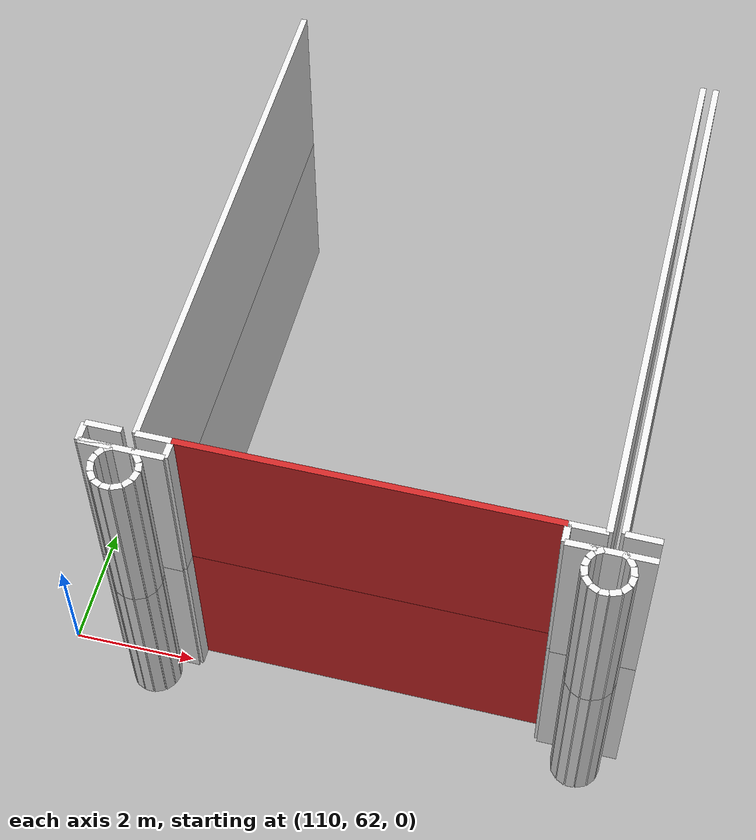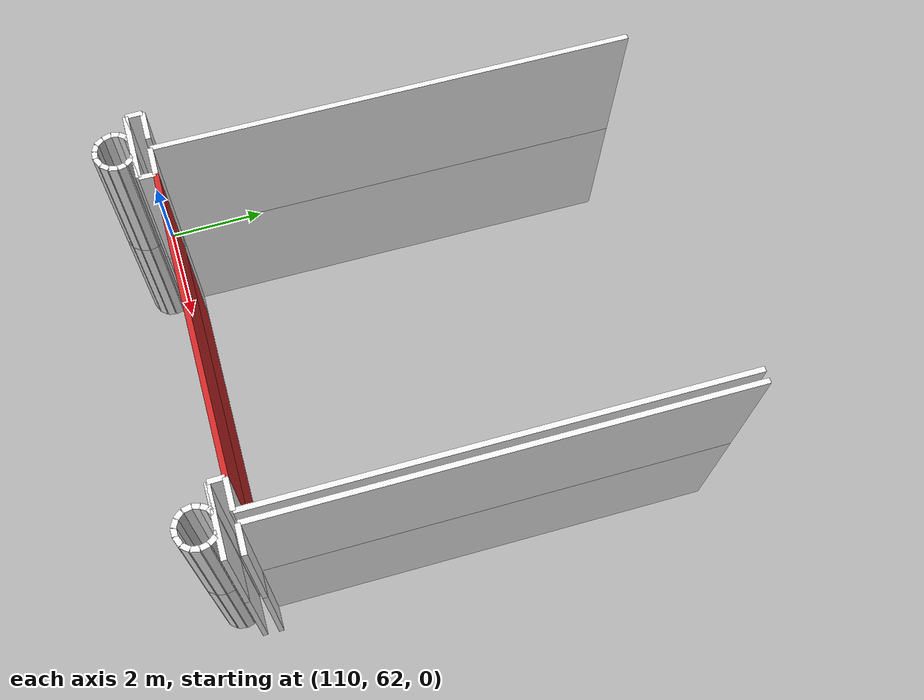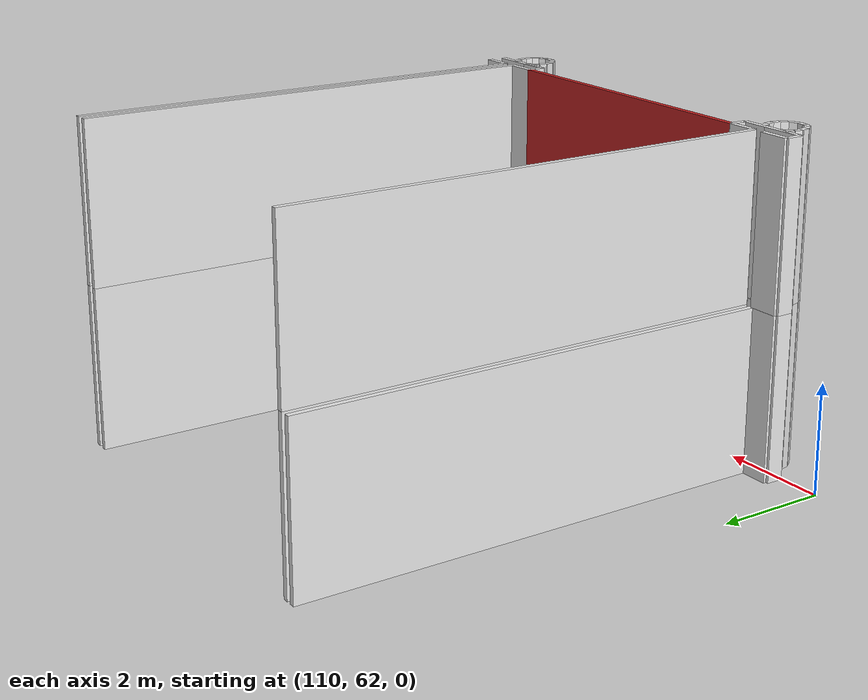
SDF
<sdf version="1.6">
 <world name="default">
  <model name="wall_115.0_62.2_1.5">
   <static>true</static>
   <pose>115.0 62.23999999999069 1.5 0 0 -0.014034166198596688</pose>
   <link name="link">
    <visual name="visual">
     <geometry><box><size>5.700561375812611 0.1 3</size></box></geometry>
     <material>
      <script><uri>file://media/materials/scripts/gazebo.material</uri><name>Gazebo/Red</name></script>
     </material>
    </visual>
    <collision name="collision"><geometry><box><size>5.700561375812611 0.1 3</size></box></geometry></collision>
   </link>
  </model>
  <model name="wall_115.0_62.2_4.5">
   <static>true</static>
   <pose>115.0 62.23999999999069 4.5 0 0 -0.014034166198596688</pose>
   <link name="link">
    <visual name="visual">
     <geometry><box><size>5.700561375812611 0.1 3</size></box></geometry>
     <material>
      <script><uri>file://media/materials/scripts/gazebo.material</uri><name>Gazebo/Red</name></script>
     </material>
    </visual>
    <collision name="collision"><geometry><box><size>5.700561375812611 0.1 3</size></box></geometry></collision>
   </link>
  </model>
  <model name="wall_118.5_66.6_1.5">
   <static>true</static>
   <pose>118.47999999998137 66.61999999987893 1.5 0 0 1.557253136818869</pose>
   <link name="link">
    <visual name="visual">
     <geometry><box><size>8.860812603688696 0.1 3</size></box></geometry>
     <material>
      <script><uri>file://media/materials/scripts/gazebo.material</uri><name>Gazebo/White</name></script>
     </material>
    </visual>
    <collision name="collision"><geometry><box><size>8.860812603688696 0.1 3</size></box></geometry></collision>
   </link>
  </model>
  <model name="wall_111.7_66.7_1.5">
   <static>true</static>
   <pose>111.6699999999837 66.71999999997206 1.5 0 0 -1.5843395167709244</pose>
   <link name="link">
    <visual name="visual">
     <geometry><box><size>8.860812603688696 0.1 3</size></box></geometry>
     <material>
      <script><uri>file://media/materials/scripts/gazebo.material</uri><name>Gazebo/White</name></script>
     </material>
    </visual>
    <collision name="collision"><geometry><box><size>8.860812603688696 0.1 3</size></box></geometry></collision>
   </link>
  </model>
  <model name="wall_111.9_62.3_1.5">
   <static>true</static>
   <pose>111.88000000000466 62.28499999991618 1.5 0 0 -0.018516402514992796</pose>
   <link name="link">
    <visual name="visual">
     <geometry><box><size>0.540092584697361 0.1 3</size></box></geometry>
     <material>
      <script><uri>file://media/materials/scripts/gazebo.material</uri><name>Gazebo/White</name></script>
     </material>
    </visual>
    <collision name="collision"><geometry><box><size>0.540092584697361 0.1 3</size></box></geometry></collision>
   </link>
  </model>
  <model name="wall_118.1_62.2_1.5">
   <static>true</static>
   <pose>118.13499999998021 62.19500000006519 1.5 0 0 -0.01754206048187066</pose>
   <link name="link">
    <visual name="visual">
     <geometry><box><size>0.5700877125608004 0.1 3</size></box></geometry>
     <material>
      <script><uri>file://media/materials/scripts/gazebo.material</uri><name>Gazebo/White</name></script>
     </material>
    </visual>
    <collision name="collision"><geometry><box><size>0.5700877125608004 0.1 3</size></box></geometry></collision>
   </link>
  </model>
  <model name="wall_118.7_66.6_1.5">
   <static>true</static>
   <pose>118.69000000000233 66.62999999988824 1.5 0 0 -1.5843701537129677</pose>
   <link name="link">
    <visual name="visual">
     <geometry><box><size>8.840814441971077 0.1 3</size></box></geometry>
     <material>
      <script><uri>file://media/materials/scripts/gazebo.material</uri><name>Gazebo/White</name></script>
     </material>
    </visual>
    <collision name="collision"><geometry><box><size>8.840814441971077 0.1 3</size></box></geometry></collision>
   </link>
  </model>
  <model name="wall_118.9_62.2_1.5">
   <static>true</static>
   <pose>118.89499999998952 62.205000000074506 1.5 0 0 -0.018865685601167047</pose>
   <link name="link">
    <visual name="visual">
     <geometry><box><size>0.5300943311934637 0.1 3</size></box></geometry>
     <material>
      <script><uri>file://media/materials/scripts/gazebo.material</uri><name>Gazebo/White</name></script>
     </material>
    </visual>
    <collision name="collision"><geometry><box><size>0.5300943311934637 0.1 3</size></box></geometry></collision>
   </link>
  </model>
  <model name="wall_111.5_66.7_1.5">
   <static>true</static>
   <pose>111.47499999997672 66.7249999998603 1.5 0 0 1.5561081176441238</pose>
   <link name="link">
    <visual name="visual">
     <geometry><box><size>8.850954750853134 0.1 3</size></box></geometry>
     <material>
      <script><uri>file://media/materials/scripts/gazebo.material</uri><name>Gazebo/White</name></script>
     </material>
    </visual>
    <collision name="collision"><geometry><box><size>8.850954750853134 0.1 3</size></box></geometry></collision>
   </link>
  </model>
  <model name="wall_111.1_62.3_1.5">
   <static>true</static>
   <pose>111.12999999997555 62.30499999993481 1.5 0 0 -0.017855245571888664</pose>
   <link name="link">
    <visual name="visual">
     <geometry><box><size>0.5600892785996132 0.1 3</size></box></geometry>
     <material>
      <script><uri>file://media/materials/scripts/gazebo.material</uri><name>Gazebo/White</name></script>
     </material>
    </visual>
    <collision name="collision"><geometry><box><size>0.5600892785996132 0.1 3</size></box></geometry></collision>
   </link>
  </model>
  <model name="wall_110.8_62.2_1.5">
   <static>true</static>
   <pose>110.84999999997672 62.15500000002794 1.5 0 0 -1.5707963267948966</pose>
   <link name="link">
    <visual name="visual">
     <geometry><box><size>0.31000000005587935 0.1 3</size></box></geometry>
     <material>
      <script><uri>file://media/materials/scripts/gazebo.material</uri><name>Gazebo/White</name></script>
     </material>
    </visual>
    <collision name="collision"><geometry><box><size>0.31000000005587935 0.1 3</size></box></geometry></collision>
   </link>
  </model>
  <model name="wall_111.1_62.0_1.5">
   <static>true</static>
   <pose>111.10999999998603 61.99500000011176 1.5 0 0 -0.01922839866933633</pose>
   <link name="link">
    <visual name="visual">
     <geometry><box><size>0.5200961449721592 0.1 3</size></box></geometry>
     <material>
      <script><uri>file://media/materials/scripts/gazebo.material</uri><name>Gazebo/White</name></script>
     </material>
    </visual>
    <collision name="collision"><geometry><box><size>0.5200961449721592 0.1 3</size></box></geometry></collision>
   </link>
  </model>
  <model name="wall_111.3_62.0_1.5">
   <static>true</static>
   <pose>111.31500000000233 61.96000000019558 1.5 0 0 -2.642245931464764</pose>
   <link name="link">
    <visual name="visual">
     <geometry><box><size>0.12529964087591056 0.1 3</size></box></geometry>
     <material>
      <script><uri>file://media/materials/scripts/gazebo.material</uri><name>Gazebo/White</name></script>
     </material>
    </visual>
    <collision name="collision"><geometry><box><size>0.12529964087591056 0.1 3</size></box></geometry></collision>
   </link>
  </model>
  <model name="wall_111.2_61.9_1.5">
   <static>true</static>
   <pose>111.22000000000116 61.875 1.5 0 0 -2.199592611857395</pose>
   <link name="link">
    <visual name="visual">
     <geometry><box><size>0.13601470536809043 0.1 3</size></box></geometry>
     <material>
      <script><uri>file://media/materials/scripts/gazebo.material</uri><name>Gazebo/White</name></script>
     </material>
    </visual>
    <collision name="collision"><geometry><box><size>0.13601470536809043 0.1 3</size></box></geometry></collision>
   </link>
  </model>
  <model name="wall_111.2_61.8_1.5">
   <static>true</static>
   <pose>111.16500000000815 61.75499999988824 1.5 0 0 -1.7975951748160817</pose>
   <link name="link">
    <visual name="visual">
     <geometry><box><size>0.13341664052556057 0.1 3</size></box></geometry>
     <material>
      <script><uri>file://media/materials/scripts/gazebo.material</uri><name>Gazebo/White</name></script>
     </material>
    </visual>
    <collision name="collision"><geometry><box><size>0.13341664052556057 0.1 3</size></box></geometry></collision>
   </link>
  </model>
  <model name="wall_111.2_61.6_1.5">
   <static>true</static>
   <pose>111.1700000000128 61.609999999869615 1.5 0 0 -1.3258176640104304</pose>
   <link name="link">
    <visual name="visual">
     <geometry><box><size>0.16492422516418664 0.1 3</size></box></geometry>
     <material>
      <script><uri>file://media/materials/scripts/gazebo.material</uri><name>Gazebo/White</name></script>
     </material>
    </visual>
    <collision name="collision"><geometry><box><size>0.16492422516418664 0.1 3</size></box></geometry></collision>
   </link>
  </model>
  <model name="wall_111.2_61.5_1.5">
   <static>true</static>
   <pose>111.23500000001513 61.46499999985099 1.5 0 0 -0.9652516626544161</pose>
   <link name="link">
    <visual name="visual">
     <geometry><box><size>0.15811388293111006 0.1 3</size></box></geometry>
     <material>
      <script><uri>file://media/materials/scripts/gazebo.material</uri><name>Gazebo/White</name></script>
     </material>
    </visual>
    <collision name="collision"><geometry><box><size>0.15811388293111006 0.1 3</size></box></geometry></collision>
   </link>
  </model>
  <model name="wall_111.3_61.4_1.5">
   <static>true</static>
   <pose>111.34500000000116 61.36999999987893 1.5 0 0 -0.4324077760816295</pose>
   <link name="link">
    <visual name="visual">
     <geometry><box><size>0.14317821060755806 0.1 3</size></box></geometry>
     <material>
      <script><uri>file://media/materials/scripts/gazebo.material</uri><name>Gazebo/White</name></script>
     </material>
    </visual>
    <collision name="collision"><geometry><box><size>0.14317821060755806 0.1 3</size></box></geometry></collision>
   </link>
  </model>
  <model name="wall_111.5_61.3_1.5">
   <static>true</static>
   <pose>111.47999999998137 61.33499999996275 1.5 0 0 -0.07130746318975038</pose>
   <link name="link">
    <visual name="visual">
     <geometry><box><size>0.1403566884741914 0.1 3</size></box></geometry>
     <material>
      <script><uri>file://media/materials/scripts/gazebo.material</uri><name>Gazebo/White</name></script>
     </material>
    </visual>
    <collision name="collision"><geometry><box><size>0.1403566884741914 0.1 3</size></box></geometry></collision>
   </link>
  </model>
  <model name="wall_111.6_61.4_1.5">
   <static>true</static>
   <pose>111.63000000000466 61.36499999999069 1.5 0 0 0.41241044064316335</pose>
   <link name="link">
    <visual name="visual">
     <geometry><box><size>0.17464249192840064 0.1 3</size></box></geometry>
     <material>
      <script><uri>file://media/materials/scripts/gazebo.material</uri><name>Gazebo/White</name></script>
     </material>
    </visual>
    <collision name="collision"><geometry><box><size>0.17464249192840064 0.1 3</size></box></geometry></collision>
   </link>
  </model>
  <model name="wall_111.8_61.5_1.5">
   <static>true</static>
   <pose>111.76000000000931 61.45999999996275 1.5 0 0 0.8760580511707278</pose>
   <link name="link">
    <visual name="visual">
     <geometry><box><size>0.15620499358908305 0.1 3</size></box></geometry>
     <material>
      <script><uri>file://media/materials/scripts/gazebo.material</uri><name>Gazebo/White</name></script>
     </material>
    </visual>
    <collision name="collision"><geometry><box><size>0.15620499358908305 0.1 3</size></box></geometry></collision>
   </link>
  </model>
  <model name="wall_111.8_61.6_1.5">
   <static>true</static>
   <pose>111.8299999999872 61.59499999997206 1.5 0 0 1.310193935023403</pose>
   <link name="link">
    <visual name="visual">
     <geometry><box><size>0.15524174686721334 0.1 3</size></box></geometry>
     <material>
      <script><uri>file://media/materials/scripts/gazebo.material</uri><name>Gazebo/White</name></script>
     </material>
    </visual>
    <collision name="collision"><geometry><box><size>0.15524174686721334 0.1 3</size></box></geometry></collision>
   </link>
  </model>
  <model name="wall_111.8_61.7_1.5">
   <static>true</static>
   <pose>111.83499999999185 61.74499999987893 1.5 0 0 1.7681918865701522</pose>
   <link name="link">
    <visual name="visual">
     <geometry><box><size>0.15297058531052382 0.1 3</size></box></geometry>
     <material>
      <script><uri>file://media/materials/scripts/gazebo.material</uri><name>Gazebo/White</name></script>
     </material>
    </visual>
    <collision name="collision"><geometry><box><size>0.15297058531052382 0.1 3</size></box></geometry></collision>
   </link>
  </model>
  <model name="wall_111.8_61.9_1.5">
   <static>true</static>
   <pose>111.76999999998952 61.88500000000931 1.5 0 0 2.2264919518895905</pose>
   <link name="link">
    <visual name="visual">
     <geometry><box><size>0.16401219497037284 0.1 3</size></box></geometry>
     <material>
      <script><uri>file://media/materials/scripts/gazebo.material</uri><name>Gazebo/White</name></script>
     </material>
    </visual>
    <collision name="collision"><geometry><box><size>0.16401219497037284 0.1 3</size></box></geometry></collision>
   </link>
  </model>
  <model name="wall_111.7_62.0_1.5">
   <static>true</static>
   <pose>111.67999999999302 61.97000000020489 1.5 0 0 2.6779450440069104</pose>
   <link name="link">
    <visual name="visual">
     <geometry><box><size>0.08944271907916658 0.1 3</size></box></geometry>
     <material>
      <script><uri>file://media/materials/scripts/gazebo.material</uri><name>Gazebo/White</name></script>
     </material>
    </visual>
    <collision name="collision"><geometry><box><size>0.08944271907916658 0.1 3</size></box></geometry></collision>
   </link>
  </model>
  <model name="wall_111.9_62.0_1.5">
   <static>true</static>
   <pose>111.89000000001397 61.985000000102445 1.5 0 0 -0.019997334457244633</pose>
   <link name="link">
    <visual name="visual">
     <geometry><box><size>0.5000999900068415 0.1 3</size></box></geometry>
     <material>
      <script><uri>file://media/materials/scripts/gazebo.material</uri><name>Gazebo/White</name></script>
     </material>
    </visual>
    <collision name="collision"><geometry><box><size>0.5000999900068415 0.1 3</size></box></geometry></collision>
   </link>
  </model>
  <model name="wall_112.1_62.1_1.5">
   <static>true</static>
   <pose>112.14500000001863 62.12999999988824 1.5 0 0 1.5374753308649667</pose>
   <link name="link">
    <visual name="visual">
     <geometry><box><size>0.30016662021022184 0.1 3</size></box></geometry>
     <material>
      <script><uri>file://media/materials/scripts/gazebo.material</uri><name>Gazebo/White</name></script>
     </material>
    </visual>
    <collision name="collision"><geometry><box><size>0.30016662021022184 0.1 3</size></box></geometry></collision>
   </link>
  </model>
  <model name="wall_117.8_62.1_1.5">
   <static>true</static>
   <pose>117.84999999997672 62.050000000046566 1.5 0 0 -1.5707963267948966</pose>
   <link name="link">
    <visual name="visual">
     <geometry><box><size>0.3000000002793968 0.1 3</size></box></geometry>
     <material>
      <script><uri>file://media/materials/scripts/gazebo.material</uri><name>Gazebo/White</name></script>
     </material>
    </visual>
    <collision name="collision"><geometry><box><size>0.3000000002793968 0.1 3</size></box></geometry></collision>
   </link>
  </model>
  <model name="wall_118.1_61.9_1.5">
   <static>true</static>
   <pose>118.11999999999534 61.89999999990687 1.5 0 0 0.0</pose>
   <link name="link">
    <visual name="visual">
     <geometry><box><size>0.5400000000372529 0.1 3</size></box></geometry>
     <material>
      <script><uri>file://media/materials/scripts/gazebo.material</uri><name>Gazebo/White</name></script>
     </material>
    </visual>
    <collision name="collision"><geometry><box><size>0.5400000000372529 0.1 3</size></box></geometry></collision>
   </link>
  </model>
  <model name="wall_118.3_61.9_1.5">
   <static>true</static>
   <pose>118.3300000000163 61.86499999999069 1.5 0 0 -2.6135182061888536</pose>
   <link name="link">
    <visual name="visual">
     <geometry><box><size>0.1389244398060078 0.1 3</size></box></geometry>
     <material>
      <script><uri>file://media/materials/scripts/gazebo.material</uri><name>Gazebo/White</name></script>
     </material>
    </visual>
    <collision name="collision"><geometry><box><size>0.1389244398060078 0.1 3</size></box></geometry></collision>
   </link>
  </model>
  <model name="wall_118.2_61.8_1.5">
   <static>true</static>
   <pose>118.23500000001513 61.7750000001397 1.5 0 0 -2.1375255449004795</pose>
   <link name="link">
    <visual name="visual">
     <geometry><box><size>0.13038404799780207 0.1 3</size></box></geometry>
     <material>
      <script><uri>file://media/materials/scripts/gazebo.material</uri><name>Gazebo/White</name></script>
     </material>
    </visual>
    <collision name="collision"><geometry><box><size>0.13038404799780207 0.1 3</size></box></geometry></collision>
   </link>
  </model>
  <model name="wall_118.2_61.7_1.5">
   <static>true</static>
   <pose>118.18499999999767 61.65500000002794 1.5 0 0 -1.7975951744563714</pose>
   <link name="link">
    <visual name="visual">
     <geometry><box><size>0.1334166409923854 0.1 3</size></box></geometry>
     <material>
      <script><uri>file://media/materials/scripts/gazebo.material</uri><name>Gazebo/White</name></script>
     </material>
    </visual>
    <collision name="collision"><geometry><box><size>0.1334166409923854 0.1 3</size></box></geometry></collision>
   </link>
  </model>
  <model name="wall_118.2_61.5_1.5">
   <static>true</static>
   <pose>118.18499999999767 61.51000000000931 1.5 0 0 -1.3854483762720382</pose>
   <link name="link">
    <visual name="visual">
     <geometry><box><size>0.16278820565491986 0.1 3</size></box></geometry>
     <material>
      <script><uri>file://media/materials/scripts/gazebo.material</uri><name>Gazebo/White</name></script>
     </material>
    </visual>
    <collision name="collision"><geometry><box><size>0.16278820565491986 0.1 3</size></box></geometry></collision>
   </link>
  </model>
  <model name="wall_118.2_61.4_1.5">
   <static>true</static>
   <pose>118.25 61.37000000011176 1.5 0 0 -0.8760580511707278</pose>
   <link name="link">
    <visual name="visual">
     <geometry><box><size>0.15620499358908305 0.1 3</size></box></geometry>
     <material>
      <script><uri>file://media/materials/scripts/gazebo.material</uri><name>Gazebo/White</name></script>
     </material>
    </visual>
    <collision name="collision"><geometry><box><size>0.15620499358908305 0.1 3</size></box></geometry></collision>
   </link>
  </model>
  <model name="wall_118.4_61.3_1.5">
   <static>true</static>
   <pose>118.36499999999069 61.2750000001397 1.5 0 0 -0.49394136790495224</pose>
   <link name="link">
    <visual name="visual">
     <geometry><box><size>0.14764823052695686 0.1 3</size></box></geometry>
     <material>
      <script><uri>file://media/materials/scripts/gazebo.material</uri><name>Gazebo/White</name></script>
     </material>
    </visual>
    <collision name="collision"><geometry><box><size>0.14764823052695686 0.1 3</size></box></geometry></collision>
   </link>
  </model>
  <model name="wall_118.5_61.2_1.5">
   <static>true</static>
   <pose>118.5 61.24000000022352 1.5 0 0 0.0</pose>
   <link name="link">
    <visual name="visual">
     <geometry><box><size>0.14000000001396984 0.1 3</size></box></geometry>
     <material>
      <script><uri>file://media/materials/scripts/gazebo.material</uri><name>Gazebo/White</name></script>
     </material>
    </visual>
    <collision name="collision"><geometry><box><size>0.14000000001396984 0.1 3</size></box></geometry></collision>
   </link>
  </model>
  <model name="wall_118.6_61.3_1.5">
   <static>true</static>
   <pose>118.64999999999418 61.27000000001863 1.5 0 0 0.3587706680778179</pose>
   <link name="link">
    <visual name="visual">
     <geometry><box><size>0.1708800747384859 0.1 3</size></box></geometry>
     <material>
      <script><uri>file://media/materials/scripts/gazebo.material</uri><name>Gazebo/White</name></script>
     </material>
    </visual>
    <collision name="collision"><geometry><box><size>0.1708800747384859 0.1 3</size></box></geometry></collision>
   </link>
  </model>
  <model name="wall_118.8_61.4_1.5">
   <static>true</static>
   <pose>118.77999999999884 61.359999999869615 1.5 0 0 0.8760580508844606</pose>
   <link name="link">
    <visual name="visual">
     <geometry><box><size>0.15620499362634668 0.1 3</size></box></geometry>
     <material>
      <script><uri>file://media/materials/scripts/gazebo.material</uri><name>Gazebo/White</name></script>
     </material>
    </visual>
    <collision name="collision"><geometry><box><size>0.15620499362634668 0.1 3</size></box></geometry></collision>
   </link>
  </model>
  <model name="wall_118.8_61.5_1.5">
   <static>true</static>
   <pose>118.84500000000116 61.49499999987893 1.5 0 0 1.373400767019641</pose>
   <link name="link">
    <visual name="visual">
     <geometry><box><size>0.15297058531052382 0.1 3</size></box></geometry>
     <material>
      <script><uri>file://media/materials/scripts/gazebo.material</uri><name>Gazebo/White</name></script>
     </material>
    </visual>
    <collision name="collision"><geometry><box><size>0.15297058531052382 0.1 3</size></box></geometry></collision>
   </link>
  </model>
  <model name="wall_118.8_61.6_1.5">
   <static>true</static>
   <pose>118.84500000000116 61.64500000001863 1.5 0 0 1.7681918859731505</pose>
   <link name="link">
    <visual name="visual">
     <geometry><box><size>0.15297058576714226 0.1 3</size></box></geometry>
     <material>
      <script><uri>file://media/materials/scripts/gazebo.material</uri><name>Gazebo/White</name></script>
     </material>
    </visual>
    <collision name="collision"><geometry><box><size>0.15297058576714226 0.1 3</size></box></geometry></collision>
   </link>
  </model>
  <model name="wall_118.8_61.8_1.5">
   <static>true</static>
   <pose>118.78500000000349 61.78500000014901 1.5 0 0 2.176340990935377</pose>
   <link name="link">
    <visual name="visual">
     <geometry><box><size>0.15811388293111006 0.1 3</size></box></geometry>
     <material>
      <script><uri>file://media/materials/scripts/gazebo.material</uri><name>Gazebo/White</name></script>
     </material>
    </visual>
    <collision name="collision"><geometry><box><size>0.15811388293111006 0.1 3</size></box></geometry></collision>
   </link>
  </model>
  <model name="wall_118.7_61.9_1.5">
   <static>true</static>
   <pose>118.69999999998254 61.87000000011176 1.5 0 0 2.6779450442979487</pose>
   <link name="link">
    <visual name="visual">
     <geometry><box><size>0.0894427191312291 0.1 3</size></box></geometry>
     <material>
      <script><uri>file://media/materials/scripts/gazebo.material</uri><name>Gazebo/White</name></script>
     </material>
    </visual>
    <collision name="collision"><geometry><box><size>0.0894427191312291 0.1 3</size></box></geometry></collision>
   </link>
  </model>
  <model name="wall_111.5_62.0_1.5">
   <static>true</static>
   <pose>111.49499999999534 61.98999999999069 1.5 0 0 -0.015502633939004449</pose>
   <link name="link">
    <visual name="visual">
     <geometry><box><size>1.2901550294816735 0.1 3</size></box></geometry>
     <material>
      <script><uri>file://media/materials/scripts/gazebo.material</uri><name>Gazebo/White</name></script>
     </material>
    </visual>
    <collision name="collision"><geometry><box><size>1.2901550294816735 0.1 3</size></box></geometry></collision>
   </link>
  </model>
  <model name="wall_118.5_61.9_1.5">
   <static>true</static>
   <pose>118.5 61.889999999897555 1.5 0 0 -0.015383401794368852</pose>
   <link name="link">
    <visual name="visual">
     <geometry><box><size>1.3001538370984478 0.1 3</size></box></geometry>
     <material>
      <script><uri>file://media/materials/scripts/gazebo.material</uri><name>Gazebo/White</name></script>
     </material>
    </visual>
    <collision name="collision"><geometry><box><size>1.3001538370984478 0.1 3</size></box></geometry></collision>
   </link>
  </model>
  <model name="wall_118.5_66.6_4.5">
   <static>true</static>
   <pose>118.47999999998137 66.61999999987893 4.5 0 0 1.557253136818869</pose>
   <link name="link">
    <visual name="visual">
     <geometry><box><size>8.860812603688696 0.1 3</size></box></geometry>
     <material>
      <script><uri>file://media/materials/scripts/gazebo.material</uri><name>Gazebo/White</name></script>
     </material>
    </visual>
    <collision name="collision"><geometry><box><size>8.860812603688696 0.1 3</size></box></geometry></collision>
   </link>
  </model>
  <model name="wall_111.7_66.7_4.5">
   <static>true</static>
   <pose>111.6699999999837 66.71999999997206 4.5 0 0 -1.5843395167709244</pose>
   <link name="link">
    <visual name="visual">
     <geometry><box><size>8.860812603688696 0.1 3</size></box></geometry>
     <material>
      <script><uri>file://media/materials/scripts/gazebo.material</uri><name>Gazebo/White</name></script>
     </material>
    </visual>
    <collision name="collision"><geometry><box><size>8.860812603688696 0.1 3</size></box></geometry></collision>
   </link>
  </model>
  <model name="wall_111.9_62.3_4.5">
   <static>true</static>
   <pose>111.88000000000466 62.28499999991618 4.5 0 0 -0.018516402514992796</pose>
   <link name="link">
    <visual name="visual">
     <geometry><box><size>0.540092584697361 0.1 3</size></box></geometry>
     <material>
      <script><uri>file://media/materials/scripts/gazebo.material</uri><name>Gazebo/White</name></script>
     </material>
    </visual>
    <collision name="collision"><geometry><box><size>0.540092584697361 0.1 3</size></box></geometry></collision>
   </link>
  </model>
  <model name="wall_118.1_62.2_4.5">
   <static>true</static>
   <pose>118.13499999998021 62.19500000006519 4.5 0 0 -0.01754206048187066</pose>
   <link name="link">
    <visual name="visual">
     <geometry><box><size>0.5700877125608004 0.1 3</size></box></geometry>
     <material>
      <script><uri>file://media/materials/scripts/gazebo.material</uri><name>Gazebo/White</name></script>
     </material>
    </visual>
    <collision name="collision"><geometry><box><size>0.5700877125608004 0.1 3</size></box></geometry></collision>
   </link>
  </model>
  <model name="wall_118.7_66.6_4.5">
   <static>true</static>
   <pose>118.69000000000233 66.62999999988824 4.5 0 0 -1.5843701537129677</pose>
   <link name="link">
    <visual name="visual">
     <geometry><box><size>8.840814441971077 0.1 3</size></box></geometry>
     <material>
      <script><uri>file://media/materials/scripts/gazebo.material</uri><name>Gazebo/White</name></script>
     </material>
    </visual>
    <collision name="collision"><geometry><box><size>8.840814441971077 0.1 3</size></box></geometry></collision>
   </link>
  </model>
  <model name="wall_118.9_62.2_4.5">
   <static>true</static>
   <pose>118.89499999998952 62.205000000074506 4.5 0 0 -0.018865685601167047</pose>
   <link name="link">
    <visual name="visual">
     <geometry><box><size>0.5300943311934637 0.1 3</size></box></geometry>
     <material>
      <script><uri>file://media/materials/scripts/gazebo.material</uri><name>Gazebo/White</name></script>
     </material>
    </visual>
    <collision name="collision"><geometry><box><size>0.5300943311934637 0.1 3</size></box></geometry></collision>
   </link>
  </model>
  <model name="wall_111.1_62.3_4.5">
   <static>true</static>
   <pose>111.12999999997555 62.30499999993481 4.5 0 0 -0.017855245571888664</pose>
   <link name="link">
    <visual name="visual">
     <geometry><box><size>0.5600892785996132 0.1 3</size></box></geometry>
     <material>
      <script><uri>file://media/materials/scripts/gazebo.material</uri><name>Gazebo/White</name></script>
     </material>
    </visual>
    <collision name="collision"><geometry><box><size>0.5600892785996132 0.1 3</size></box></geometry></collision>
   </link>
  </model>
  <model name="wall_110.8_62.2_4.5">
   <static>true</static>
   <pose>110.84999999997672 62.15500000002794 4.5 0 0 -1.5707963267948966</pose>
   <link name="link">
    <visual name="visual">
     <geometry><box><size>0.31000000005587935 0.1 3</size></box></geometry>
     <material>
      <script><uri>file://media/materials/scripts/gazebo.material</uri><name>Gazebo/White</name></script>
     </material>
    </visual>
    <collision name="collision"><geometry><box><size>0.31000000005587935 0.1 3</size></box></geometry></collision>
   </link>
  </model>
  <model name="wall_111.1_62.0_4.5">
   <static>true</static>
   <pose>111.10999999998603 61.99500000011176 4.5 0 0 -0.01922839866933633</pose>
   <link name="link">
    <visual name="visual">
     <geometry><box><size>0.5200961449721592 0.1 3</size></box></geometry>
     <material>
      <script><uri>file://media/materials/scripts/gazebo.material</uri><name>Gazebo/White</name></script>
     </material>
    </visual>
    <collision name="collision"><geometry><box><size>0.5200961449721592 0.1 3</size></box></geometry></collision>
   </link>
  </model>
  <model name="wall_111.3_62.0_4.5">
   <static>true</static>
   <pose>111.31500000000233 61.96000000019558 4.5 0 0 -2.642245931464764</pose>
   <link name="link">
    <visual name="visual">
     <geometry><box><size>0.12529964087591056 0.1 3</size></box></geometry>
     <material>
      <script><uri>file://media/materials/scripts/gazebo.material</uri><name>Gazebo/White</name></script>
     </material>
    </visual>
    <collision name="collision"><geometry><box><size>0.12529964087591056 0.1 3</size></box></geometry></collision>
   </link>
  </model>
  <model name="wall_111.2_61.9_4.5">
   <static>true</static>
   <pose>111.22000000000116 61.875 4.5 0 0 -2.199592611857395</pose>
   <link name="link">
    <visual name="visual">
     <geometry><box><size>0.13601470536809043 0.1 3</size></box></geometry>
     <material>
      <script><uri>file://media/materials/scripts/gazebo.material</uri><name>Gazebo/White</name></script>
     </material>
    </visual>
    <collision name="collision"><geometry><box><size>0.13601470536809043 0.1 3</size></box></geometry></collision>
   </link>
  </model>
  <model name="wall_111.2_61.8_4.5">
   <static>true</static>
   <pose>111.16500000000815 61.75499999988824 4.5 0 0 -1.7975951748160817</pose>
   <link name="link">
    <visual name="visual">
     <geometry><box><size>0.13341664052556057 0.1 3</size></box></geometry>
     <material>
      <script><uri>file://media/materials/scripts/gazebo.material</uri><name>Gazebo/White</name></script>
     </material>
    </visual>
    <collision name="collision"><geometry><box><size>0.13341664052556057 0.1 3</size></box></geometry></collision>
   </link>
  </model>
  <model name="wall_111.2_61.6_4.5">
   <static>true</static>
   <pose>111.1700000000128 61.609999999869615 4.5 0 0 -1.3258176640104304</pose>
   <link name="link">
    <visual name="visual">
     <geometry><box><size>0.16492422516418664 0.1 3</size></box></geometry>
     <material>
      <script><uri>file://media/materials/scripts/gazebo.material</uri><name>Gazebo/White</name></script>
     </material>
    </visual>
    <collision name="collision"><geometry><box><size>0.16492422516418664 0.1 3</size></box></geometry></collision>
   </link>
  </model>
  <model name="wall_111.2_61.5_4.5">
   <static>true</static>
   <pose>111.23500000001513 61.46499999985099 4.5 0 0 -0.9652516626544161</pose>
   <link name="link">
    <visual name="visual">
     <geometry><box><size>0.15811388293111006 0.1 3</size></box></geometry>
     <material>
      <script><uri>file://media/materials/scripts/gazebo.material</uri><name>Gazebo/White</name></script>
     </material>
    </visual>
    <collision name="collision"><geometry><box><size>0.15811388293111006 0.1 3</size></box></geometry></collision>
   </link>
  </model>
  <model name="wall_111.3_61.4_4.5">
   <static>true</static>
   <pose>111.34500000000116 61.36999999987893 4.5 0 0 -0.4324077760816295</pose>
   <link name="link">
    <visual name="visual">
     <geometry><box><size>0.14317821060755806 0.1 3</size></box></geometry>
     <material>
      <script><uri>file://media/materials/scripts/gazebo.material</uri><name>Gazebo/White</name></script>
     </material>
    </visual>
    <collision name="collision"><geometry><box><size>0.14317821060755806 0.1 3</size></box></geometry></collision>
   </link>
  </model>
  <model name="wall_111.5_61.3_4.5">
   <static>true</static>
   <pose>111.47999999998137 61.33499999996275 4.5 0 0 -0.07130746318975038</pose>
   <link name="link">
    <visual name="visual">
     <geometry><box><size>0.1403566884741914 0.1 3</size></box></geometry>
     <material>
      <script><uri>file://media/materials/scripts/gazebo.material</uri><name>Gazebo/White</name></script>
     </material>
    </visual>
    <collision name="collision"><geometry><box><size>0.1403566884741914 0.1 3</size></box></geometry></collision>
   </link>
  </model>
  <model name="wall_111.6_61.4_4.5">
   <static>true</static>
   <pose>111.63000000000466 61.36499999999069 4.5 0 0 0.41241044064316335</pose>
   <link name="link">
    <visual name="visual">
     <geometry><box><size>0.17464249192840064 0.1 3</size></box></geometry>
     <material>
      <script><uri>file://media/materials/scripts/gazebo.material</uri><name>Gazebo/White</name></script>
     </material>
    </visual>
    <collision name="collision"><geometry><box><size>0.17464249192840064 0.1 3</size></box></geometry></collision>
   </link>
  </model>
  <model name="wall_111.8_61.5_4.5">
   <static>true</static>
   <pose>111.76000000000931 61.45999999996275 4.5 0 0 0.8760580511707278</pose>
   <link name="link">
    <visual name="visual">
     <geometry><box><size>0.15620499358908305 0.1 3</size></box></geometry>
     <material>
      <script><uri>file://media/materials/scripts/gazebo.material</uri><name>Gazebo/White</name></script>
     </material>
    </visual>
    <collision name="collision"><geometry><box><size>0.15620499358908305 0.1 3</size></box></geometry></collision>
   </link>
  </model>
  <model name="wall_111.8_61.6_4.5">
   <static>true</static>
   <pose>111.8299999999872 61.59499999997206 4.5 0 0 1.310193935023403</pose>
   <link name="link">
    <visual name="visual">
     <geometry><box><size>0.15524174686721334 0.1 3</size></box></geometry>
     <material>
      <script><uri>file://media/materials/scripts/gazebo.material</uri><name>Gazebo/White</name></script>
     </material>
    </visual>
    <collision name="collision"><geometry><box><size>0.15524174686721334 0.1 3</size></box></geometry></collision>
   </link>
  </model>
  <model name="wall_111.8_61.7_4.5">
   <static>true</static>
   <pose>111.83499999999185 61.74499999987893 4.5 0 0 1.7681918865701522</pose>
   <link name="link">
    <visual name="visual">
     <geometry><box><size>0.15297058531052382 0.1 3</size></box></geometry>
     <material>
      <script><uri>file://media/materials/scripts/gazebo.material</uri><name>Gazebo/White</name></script>
     </material>
    </visual>
    <collision name="collision"><geometry><box><size>0.15297058531052382 0.1 3</size></box></geometry></collision>
   </link>
  </model>
  <model name="wall_111.8_61.9_4.5">
   <static>true</static>
   <pose>111.76999999998952 61.88500000000931 4.5 0 0 2.2264919518895905</pose>
   <link name="link">
    <visual name="visual">
     <geometry><box><size>0.16401219497037284 0.1 3</size></box></geometry>
     <material>
      <script><uri>file://media/materials/scripts/gazebo.material</uri><name>Gazebo/White</name></script>
     </material>
    </visual>
    <collision name="collision"><geometry><box><size>0.16401219497037284 0.1 3</size></box></geometry></collision>
   </link>
  </model>
  <model name="wall_111.7_62.0_4.5">
   <static>true</static>
   <pose>111.67999999999302 61.97000000020489 4.5 0 0 2.6779450440069104</pose>
   <link name="link">
    <visual name="visual">
     <geometry><box><size>0.08944271907916658 0.1 3</size></box></geometry>
     <material>
      <script><uri>file://media/materials/scripts/gazebo.material</uri><name>Gazebo/White</name></script>
     </material>
    </visual>
    <collision name="collision"><geometry><box><size>0.08944271907916658 0.1 3</size></box></geometry></collision>
   </link>
  </model>
  <model name="wall_111.9_62.0_4.5">
   <static>true</static>
   <pose>111.89000000001397 61.985000000102445 4.5 0 0 -0.019997334457244633</pose>
   <link name="link">
    <visual name="visual">
     <geometry><box><size>0.5000999900068415 0.1 3</size></box></geometry>
     <material>
      <script><uri>file://media/materials/scripts/gazebo.material</uri><name>Gazebo/White</name></script>
     </material>
    </visual>
    <collision name="collision"><geometry><box><size>0.5000999900068415 0.1 3</size></box></geometry></collision>
   </link>
  </model>
  <model name="wall_112.1_62.1_4.5">
   <static>true</static>
   <pose>112.14500000001863 62.12999999988824 4.5 0 0 1.5374753308649667</pose>
   <link name="link">
    <visual name="visual">
     <geometry><box><size>0.30016662021022184 0.1 3</size></box></geometry>
     <material>
      <script><uri>file://media/materials/scripts/gazebo.material</uri><name>Gazebo/White</name></script>
     </material>
    </visual>
    <collision name="collision"><geometry><box><size>0.30016662021022184 0.1 3</size></box></geometry></collision>
   </link>
  </model>
  <model name="wall_117.8_62.1_4.5">
   <static>true</static>
   <pose>117.84999999997672 62.050000000046566 4.5 0 0 -1.5707963267948966</pose>
   <link name="link">
    <visual name="visual">
     <geometry><box><size>0.3000000002793968 0.1 3</size></box></geometry>
     <material>
      <script><uri>file://media/materials/scripts/gazebo.material</uri><name>Gazebo/White</name></script>
     </material>
    </visual>
    <collision name="collision"><geometry><box><size>0.3000000002793968 0.1 3</size></box></geometry></collision>
   </link>
  </model>
  <model name="wall_118.1_61.9_4.5">
   <static>true</static>
   <pose>118.11999999999534 61.89999999990687 4.5 0 0 0.0</pose>
   <link name="link">
    <visual name="visual">
     <geometry><box><size>0.5400000000372529 0.1 3</size></box></geometry>
     <material>
      <script><uri>file://media/materials/scripts/gazebo.material</uri><name>Gazebo/White</name></script>
     </material>
    </visual>
    <collision name="collision"><geometry><box><size>0.5400000000372529 0.1 3</size></box></geometry></collision>
   </link>
  </model>
  <model name="wall_118.3_61.9_4.5">
   <static>true</static>
   <pose>118.3300000000163 61.86499999999069 4.5 0 0 -2.6135182061888536</pose>
   <link name="link">
    <visual name="visual">
     <geometry><box><size>0.1389244398060078 0.1 3</size></box></geometry>
     <material>
      <script><uri>file://media/materials/scripts/gazebo.material</uri><name>Gazebo/White</name></script>
     </material>
    </visual>
    <collision name="collision"><geometry><box><size>0.1389244398060078 0.1 3</size></box></geometry></collision>
   </link>
  </model>
  <model name="wall_118.2_61.8_4.5">
   <static>true</static>
   <pose>118.23500000001513 61.7750000001397 4.5 0 0 -2.1375255449004795</pose>
   <link name="link">
    <visual name="visual">
     <geometry><box><size>0.13038404799780207 0.1 3</size></box></geometry>
     <material>
      <script><uri>file://media/materials/scripts/gazebo.material</uri><name>Gazebo/White</name></script>
     </material>
    </visual>
    <collision name="collision"><geometry><box><size>0.13038404799780207 0.1 3</size></box></geometry></collision>
   </link>
  </model>
  <model name="wall_118.2_61.7_4.5">
   <static>true</static>
   <pose>118.18499999999767 61.65500000002794 4.5 0 0 -1.7975951744563714</pose>
   <link name="link">
    <visual name="visual">
     <geometry><box><size>0.1334166409923854 0.1 3</size></box></geometry>
     <material>
      <script><uri>file://media/materials/scripts/gazebo.material</uri><name>Gazebo/White</name></script>
     </material>
    </visual>
    <collision name="collision"><geometry><box><size>0.1334166409923854 0.1 3</size></box></geometry></collision>
   </link>
  </model>
  <model name="wall_118.2_61.5_4.5">
   <static>true</static>
   <pose>118.18499999999767 61.51000000000931 4.5 0 0 -1.3854483762720382</pose>
   <link name="link">
    <visual name="visual">
     <geometry><box><size>0.16278820565491986 0.1 3</size></box></geometry>
     <material>
      <script><uri>file://media/materials/scripts/gazebo.material</uri><name>Gazebo/White</name></script>
     </material>
    </visual>
    <collision name="collision"><geometry><box><size>0.16278820565491986 0.1 3</size></box></geometry></collision>
   </link>
  </model>
  <model name="wall_118.2_61.4_4.5">
   <static>true</static>
   <pose>118.25 61.37000000011176 4.5 0 0 -0.8760580511707278</pose>
   <link name="link">
    <visual name="visual">
     <geometry><box><size>0.15620499358908305 0.1 3</size></box></geometry>
     <material>
      <script><uri>file://media/materials/scripts/gazebo.material</uri><name>Gazebo/White</name></script>
     </material>
    </visual>
    <collision name="collision"><geometry><box><size>0.15620499358908305 0.1 3</size></box></geometry></collision>
   </link>
  </model>
  <model name="wall_118.4_61.3_4.5">
   <static>true</static>
   <pose>118.36499999999069 61.2750000001397 4.5 0 0 -0.49394136790495224</pose>
   <link name="link">
    <visual name="visual">
     <geometry><box><size>0.14764823052695686 0.1 3</size></box></geometry>
     <material>
      <script><uri>file://media/materials/scripts/gazebo.material</uri><name>Gazebo/White</name></script>
     </material>
    </visual>
    <collision name="collision"><geometry><box><size>0.14764823052695686 0.1 3</size></box></geometry></collision>
   </link>
  </model>
  <model name="wall_118.5_61.2_4.5">
   <static>true</static>
   <pose>118.5 61.24000000022352 4.5 0 0 0.0</pose>
   <link name="link">
    <visual name="visual">
     <geometry><box><size>0.14000000001396984 0.1 3</size></box></geometry>
     <material>
      <script><uri>file://media/materials/scripts/gazebo.material</uri><name>Gazebo/White</name></script>
     </material>
    </visual>
    <collision name="collision"><geometry><box><size>0.14000000001396984 0.1 3</size></box></geometry></collision>
   </link>
  </model>
  <model name="wall_118.6_61.3_4.5">
   <static>true</static>
   <pose>118.64999999999418 61.27000000001863 4.5 0 0 0.3587706680778179</pose>
   <link name="link">
    <visual name="visual">
     <geometry><box><size>0.1708800747384859 0.1 3</size></box></geometry>
     <material>
      <script><uri>file://media/materials/scripts/gazebo.material</uri><name>Gazebo/White</name></script>
     </material>
    </visual>
    <collision name="collision"><geometry><box><size>0.1708800747384859 0.1 3</size></box></geometry></collision>
   </link>
  </model>
  <model name="wall_118.8_61.4_4.5">
   <static>true</static>
   <pose>118.77999999999884 61.359999999869615 4.5 0 0 0.8760580508844606</pose>
   <link name="link">
    <visual name="visual">
     <geometry><box><size>0.15620499362634668 0.1 3</size></box></geometry>
     <material>
      <script><uri>file://media/materials/scripts/gazebo.material</uri><name>Gazebo/White</name></script>
     </material>
    </visual>
    <collision name="collision"><geometry><box><size>0.15620499362634668 0.1 3</size></box></geometry></collision>
   </link>
  </model>
  <model name="wall_118.8_61.5_4.5">
   <static>true</static>
   <pose>118.84500000000116 61.49499999987893 4.5 0 0 1.373400767019641</pose>
   <link name="link">
    <visual name="visual">
     <geometry><box><size>0.15297058531052382 0.1 3</size></box></geometry>
     <material>
      <script><uri>file://media/materials/scripts/gazebo.material</uri><name>Gazebo/White</name></script>
     </material>
    </visual>
    <collision name="collision"><geometry><box><size>0.15297058531052382 0.1 3</size></box></geometry></collision>
   </link>
  </model>
  <model name="wall_118.8_61.6_4.5">
   <static>true</static>
   <pose>118.84500000000116 61.64500000001863 4.5 0 0 1.7681918859731505</pose>
   <link name="link">
    <visual name="visual">
     <geometry><box><size>0.15297058576714226 0.1 3</size></box></geometry>
     <material>
      <script><uri>file://media/materials/scripts/gazebo.material</uri><name>Gazebo/White</name></script>
     </material>
    </visual>
    <collision name="collision"><geometry><box><size>0.15297058576714226 0.1 3</size></box></geometry></collision>
   </link>
  </model>
  <model name="wall_118.8_61.8_4.5">
   <static>true</static>
   <pose>118.78500000000349 61.78500000014901 4.5 0 0 2.176340990935377</pose>
   <link name="link">
    <visual name="visual">
     <geometry><box><size>0.15811388293111006 0.1 3</size></box></geometry>
     <material>
      <script><uri>file://media/materials/scripts/gazebo.material</uri><name>Gazebo/White</name></script>
     </material>
    </visual>
    <collision name="collision"><geometry><box><size>0.15811388293111006 0.1 3</size></box></geometry></collision>
   </link>
  </model>
  <model name="wall_118.7_61.9_4.5">
   <static>true</static>
   <pose>118.69999999998254 61.87000000011176 4.5 0 0 2.6779450442979487</pose>
   <link name="link">
    <visual name="visual">
     <geometry><box><size>0.0894427191312291 0.1 3</size></box></geometry>
     <material>
      <script><uri>file://media/materials/scripts/gazebo.material</uri><name>Gazebo/White</name></script>
     </material>
    </visual>
    <collision name="collision"><geometry><box><size>0.0894427191312291 0.1 3</size></box></geometry></collision>
   </link>
  </model>
  <model name="wall_118.5_61.9_4.5">
   <static>true</static>
   <pose>118.5 61.889999999897555 4.5 0 0 3.1262092517954243</pose>
   <link name="link">
    <visual name="visual">
     <geometry><box><size>1.3001538370984478 0.1 3</size></box></geometry>
     <material>
      <script><uri>file://media/materials/scripts/gazebo.material</uri><name>Gazebo/White</name></script>
     </material>
    </visual>
    <collision name="collision"><geometry><box><size>1.3001538370984478 0.1 3</size></box></geometry></collision>
   </link>
  </model>
  <model name="wall_111.5_62.0_4.5">
   <static>true</static>
   <pose>111.49499999999534 61.98999999999069 4.5 0 0 3.1260900196507886</pose>
   <link name="link">
    <visual name="visual">
     <geometry><box><size>1.2901550294816735 0.1 3</size></box></geometry>
     <material>
      <script><uri>file://media/materials/scripts/gazebo.material</uri><name>Gazebo/White</name></script>
     </material>
    </visual>
    <collision name="collision"><geometry><box><size>1.2901550294816735 0.1 3</size></box></geometry></collision>
   </link>
  </model>
 </world>
</sdf>
